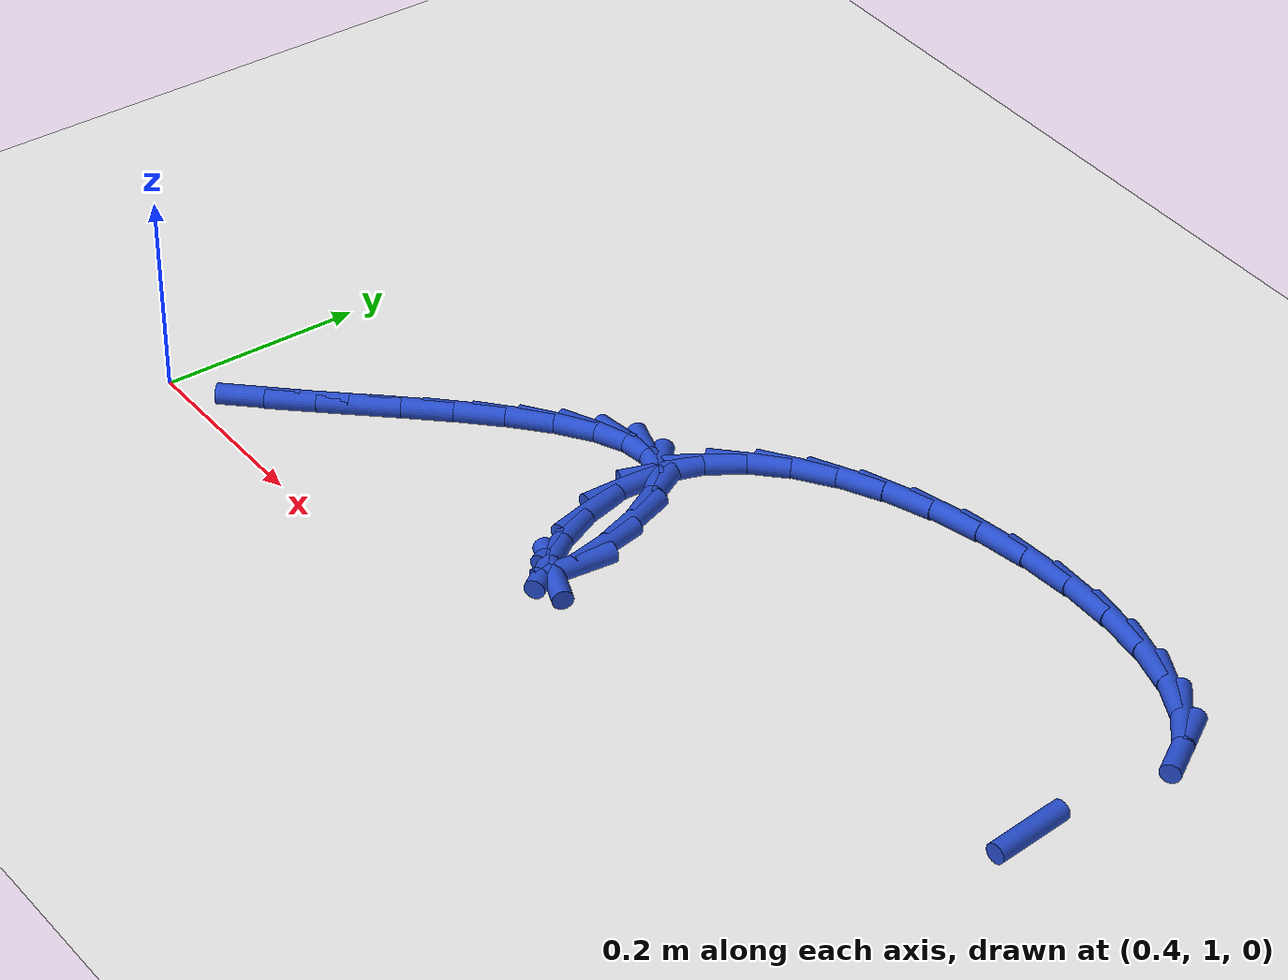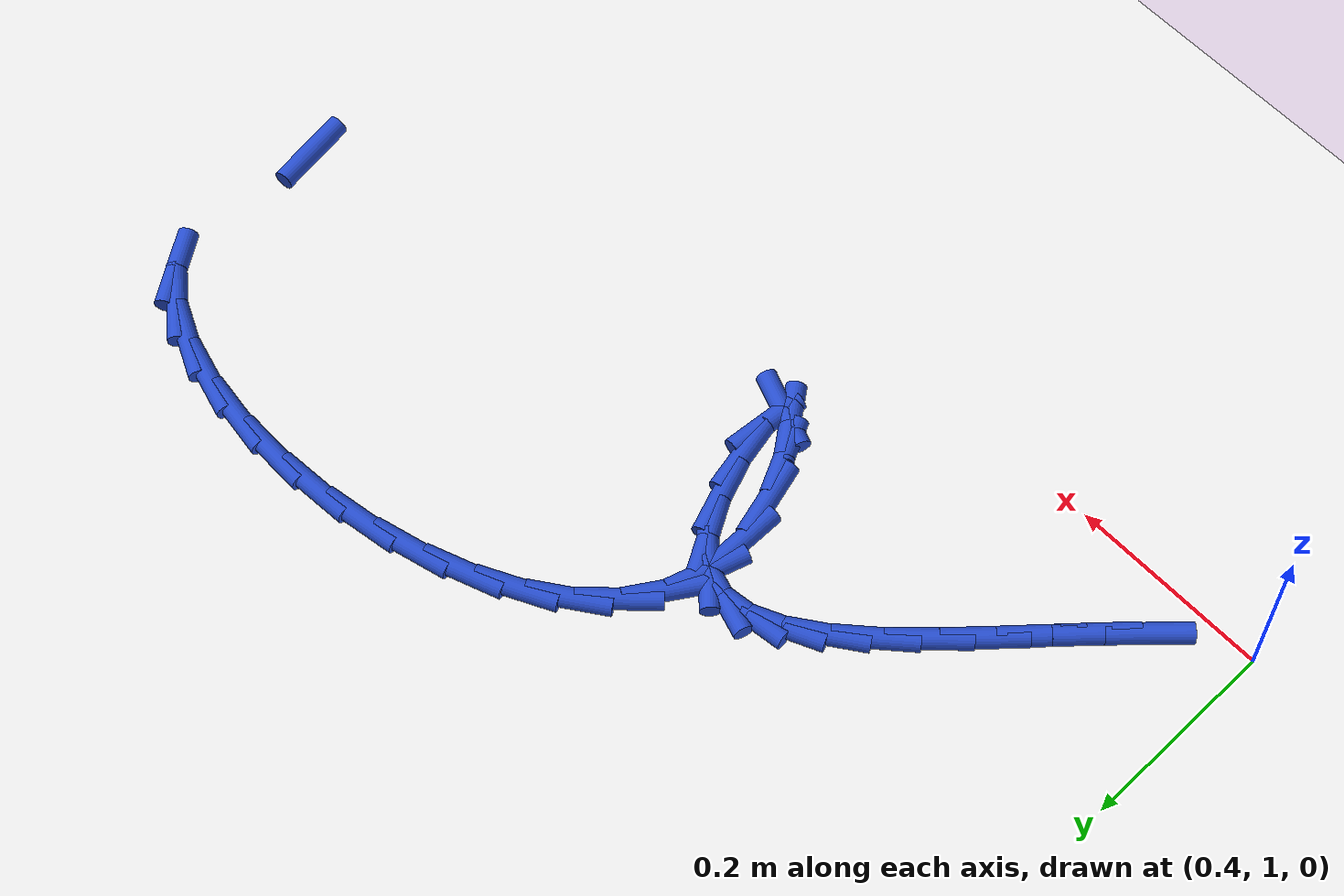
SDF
<sdf version="1.6">
 <world name="default">
  <model name="ground_plane">
   <static>1</static>
   <link name="link">
    <collision name="collision">
     <geometry><plane><normal>0 0 1</normal><size>100 100</size></plane></geometry>
     <surface><friction><ode><mu>100</mu><mu2>50</mu2></ode></friction></surface>
    </collision>
    <visual name="visual">
     <cast_shadows>0</cast_shadows>
     <geometry><plane><normal>0 0 1</normal><size>100 100</size></plane></geometry>
     <material>
      <script><uri>file://media/materials/scripts/gazebo.material</uri><name>Gazebo/WhiteGlow</name></script>
     </material>
    </visual>
   </link>
  </model>
  <model name="line">
   <link name="link_34">
    <pose>0.48012306133896443 1.0497943242061885 0.01 0 1.57 0.8080976363440308</pose>
    <collision name="collision">
     <geometry><cylinder><radius>0.01</radius><length>0.08</length></cylinder></geometry>
    </collision>
    <visual name="visual">
     <material>
      <script><name>Gazebo/Blue</name><uri>file://media/materials/scripts/gazebo.material</uri></script>
     </material>
     <geometry><cylinder><radius>0.01</radius><length>0.08</length></cylinder></geometry>
    </visual>
   </link>
   <link name="link_35">
    <pose>0.5123705516127621 1.0835400838149782 0.01 0 1.57 0.8311679696498147</pose>
    <collision name="collision">
     <geometry><cylinder><radius>0.01</radius><length>0.08</length></cylinder></geometry>
    </collision>
    <visual name="visual">
     <material>
      <script><name>Gazebo/Blue</name><uri>file://media/materials/scripts/gazebo.material</uri></script>
     </material>
     <geometry><cylinder><radius>0.01</radius><length>0.08</length></cylinder></geometry>
    </visual>
   </link>
   <link name="link_36">
    <pose>0.5454415224517037 1.1197858872515476 0.01 0 1.57 0.8341838294463393</pose>
    <collision name="collision">
     <geometry><cylinder><radius>0.01</radius><length>0.08</length></cylinder></geometry>
    </collision>
    <visual name="visual">
     <material>
      <script><name>Gazebo/Blue</name><uri>file://media/materials/scripts/gazebo.material</uri></script>
     </material>
     <geometry><cylinder><radius>0.01</radius><length>0.08</length></cylinder></geometry>
    </visual>
   </link>
   <link name="link_37">
    <pose>0.578967070326665 1.1567532076083569 0.01 0 1.57 0.8182096686960248</pose>
    <collision name="collision">
     <geometry><cylinder><radius>0.01</radius><length>0.08</length></cylinder></geometry>
    </collision>
    <visual name="visual">
     <material>
      <script><name>Gazebo/Blue</name><uri>file://media/materials/scripts/gazebo.material</uri></script>
     </material>
     <geometry><cylinder><radius>0.01</radius><length>0.08</length></cylinder></geometry>
    </visual>
   </link>
   <link name="link_38">
    <pose>0.6125751749175075 1.1926424432223204 0.01 0 1.57 0.780768452800222</pose>
    <collision name="collision">
     <geometry><cylinder><radius>0.01</radius><length>0.08</length></cylinder></geometry>
    </collision>
    <visual name="visual">
     <material>
      <script><name>Gazebo/Blue</name><uri>file://media/materials/scripts/gazebo.material</uri></script>
     </material>
     <geometry><cylinder><radius>0.01</radius><length>0.08</length></cylinder></geometry>
    </visual>
   </link>
   <link name="link_39">
    <pose>0.6458938159040948 1.2256539924303536 0.01 0 1.57 0.7146393745853895</pose>
    <collision name="collision">
     <geometry><cylinder><radius>0.01</radius><length>0.08</length></cylinder></geometry>
    </collision>
    <visual name="visual">
     <material>
      <script><name>Gazebo/Blue</name><uri>file://media/materials/scripts/gazebo.material</uri></script>
     </material>
     <geometry><cylinder><radius>0.01</radius><length>0.08</length></cylinder></geometry>
    </visual>
   </link>
   <link name="link_40">
    <pose>0.6785509729662886 1.2539882535693712 0.01 0 1.57 0.6047762715896927</pose>
    <collision name="collision">
     <geometry><cylinder><radius>0.01</radius><length>0.08</length></cylinder></geometry>
    </collision>
    <visual name="visual">
     <material>
      <script><name>Gazebo/Blue</name><uri>file://media/materials/scripts/gazebo.material</uri></script>
     </material>
     <geometry><cylinder><radius>0.01</radius><length>0.08</length></cylinder></geometry>
    </visual>
   </link>
   <link name="link_41">
    <pose>0.7101746257839522 1.2758456249762888 0.01 0 1.57 0.4223783432243723</pose>
    <collision name="collision">
     <geometry><cylinder><radius>0.01</radius><length>0.08</length></cylinder></geometry>
    </collision>
    <visual name="visual">
     <material>
      <script><name>Gazebo/Blue</name><uri>file://media/materials/scripts/gazebo.material</uri></script>
     </material>
     <geometry><cylinder><radius>0.01</radius><length>0.08</length></cylinder></geometry>
    </visual>
   </link>
   <link name="link_42">
    <pose>0.740392754036947 1.2894265049880203 0.01 0 1.57 0.12261371296069828</pose>
    <collision name="collision">
     <geometry><cylinder><radius>0.01</radius><length>0.08</length></cylinder></geometry>
    </collision>
    <visual name="visual">
     <material>
      <script><name>Gazebo/Blue</name><uri>file://media/materials/scripts/gazebo.material</uri></script>
     </material>
     <geometry><cylinder><radius>0.01</radius><length>0.08</length></cylinder></geometry>
    </visual>
   </link>
   <link name="link_43">
    <pose>0.7688333374051366 1.2929312919414815 0.01 0 1.57 -0.3082456287313501</pose>
    <collision name="collision">
     <geometry><cylinder><radius>0.01</radius><length>0.08</length></cylinder></geometry>
    </collision>
    <visual name="visual">
     <material>
      <script><name>Gazebo/Blue</name><uri>file://media/materials/scripts/gazebo.material</uri></script>
     </material>
     <geometry><cylinder><radius>0.01</radius><length>0.08</length></cylinder></geometry>
    </visual>
   </link>
   <link name="link_44">
    <pose>0.7951243555683829 1.284560384173587 0.01 0 1.57 -0.74780365004351</pose>
    <collision name="collision">
     <geometry><cylinder><radius>0.01</radius><length>0.08</length></cylinder></geometry>
    </collision>
    <visual name="visual">
     <material>
      <script><name>Gazebo/Blue</name><uri>file://media/materials/scripts/gazebo.material</uri></script>
     </material>
     <geometry><cylinder><radius>0.01</radius><length>0.08</length></cylinder></geometry>
    </visual>
   </link>
   <link name="link_45">
    <pose>0.8188937882065485 1.262514180021252 0.01 0 1.57 -1.0548621084331538</pose>
    <collision name="collision">
     <geometry><cylinder><radius>0.01</radius><length>0.08</length></cylinder></geometry>
    </collision>
    <visual name="visual">
     <material>
      <script><name>Gazebo/Blue</name><uri>file://media/materials/scripts/gazebo.material</uri></script>
     </material>
     <geometry><cylinder><radius>0.01</radius><length>0.08</length></cylinder></geometry>
    </visual>
   </link>
   <link name="link_46">
    <pose>0.8396079270320379 1.2259926234696037 0.01 0 1.57 -1.2220957559005912</pose>
    <collision name="collision">
     <geometry><cylinder><radius>0.01</radius><length>0.08</length></cylinder></geometry>
    </collision>
    <visual name="visual">
     <material>
      <script><name>Gazebo/Blue</name><uri>file://media/materials/scripts/gazebo.material</uri></script>
     </material>
     <geometry><cylinder><radius>0.01</radius><length>0.08</length></cylinder></geometry>
    </visual>
   </link>
   <link name="link_47">
    <pose>0.8553655190994893 1.1826497403559655 0.01 0 1.57 -1.3593594995580638</pose>
    <collision name="collision">
     <geometry><cylinder><radius>0.01</radius><length>0.08</length></cylinder></geometry>
    </collision>
    <visual name="visual">
     <material>
      <script><name>Gazebo/Blue</name><uri>file://media/materials/scripts/gazebo.material</uri></script>
     </material>
     <geometry><cylinder><radius>0.01</radius><length>0.08</length></cylinder></geometry>
    </visual>
   </link>
   <link name="link_48">
    <pose>0.8635776683142906 1.1443905266310386 0.01 0 1.57 1.4802933757255572</pose>
    <collision name="collision">
     <geometry><cylinder><radius>0.01</radius><length>0.08</length></cylinder></geometry>
    </collision>
    <visual name="visual">
     <material>
      <script><name>Gazebo/Blue</name><uri>file://media/materials/scripts/gazebo.material</uri></script>
     </material>
     <geometry><cylinder><radius>0.01</radius><length>0.08</length></cylinder></geometry>
    </visual>
   </link>
   <link name="link_49">
    <pose>0.8616502699073799 1.123152177969227 0.01 0 1.57 -0.38003708982980605</pose>
    <collision name="collision">
     <geometry><cylinder><radius>0.01</radius><length>0.08</length></cylinder></geometry>
    </collision>
    <visual name="visual">
     <material>
      <script><name>Gazebo/Blue</name><uri>file://media/materials/scripts/gazebo.material</uri></script>
     </material>
     <geometry><cylinder><radius>0.01</radius><length>0.08</length></cylinder></geometry>
    </visual>
   </link>
   <link name="link_50">
    <pose>0.8480536195474618 1.1285834378490758 0.01 0 1.57 -0.9412311982583728</pose>
    <collision name="collision">
     <geometry><cylinder><radius>0.01</radius><length>0.08</length></cylinder></geometry>
    </collision>
    <visual name="visual">
     <material>
      <script><name>Gazebo/Blue</name><uri>file://media/materials/scripts/gazebo.material</uri></script>
     </material>
     <geometry><cylinder><radius>0.01</radius><length>0.08</length></cylinder></geometry>
    </visual>
   </link>
   <link name="link_51">
    <pose>0.8276464142431103 1.156598039356859 0.01 0 1.57 -1.1211320933706357</pose>
    <collision name="collision">
     <geometry><cylinder><radius>0.01</radius><length>0.08</length></cylinder></geometry>
    </collision>
    <visual name="visual">
     <material>
      <script><name>Gazebo/Blue</name><uri>file://media/materials/scripts/gazebo.material</uri></script>
     </material>
     <geometry><cylinder><radius>0.01</radius><length>0.08</length></cylinder></geometry>
    </visual>
   </link>
   <link name="link_52">
    <pose>0.8076597823152123 1.1980090077497736 0.01 0 1.57 -1.3066910710389916</pose>
    <collision name="collision">
     <geometry><cylinder><radius>0.01</radius><length>0.08</length></cylinder></geometry>
    </collision>
    <visual name="visual">
     <material>
      <script><name>Gazebo/Blue</name><uri>file://media/materials/scripts/gazebo.material</uri></script>
     </material>
     <geometry><cylinder><radius>0.01</radius><length>0.08</length></cylinder></geometry>
    </visual>
   </link>
   <link name="link_53">
    <pose>0.795323969610544 1.2436258807061757 0.01 0 1.57 1.5627005516731884</pose>
    <collision name="collision">
     <geometry><cylinder><radius>0.01</radius><length>0.08</length></cylinder></geometry>
    </collision>
    <visual name="visual">
     <material>
      <script><name>Gazebo/Blue</name><uri>file://media/materials/scripts/gazebo.material</uri></script>
     </material>
     <geometry><cylinder><radius>0.01</radius><length>0.08</length></cylinder></geometry>
    </visual>
   </link>
   <link name="link_54">
    <pose>0.7956712769642732 1.2865247706561351 0.01 0 1.57 1.2639186267338465</pose>
    <collision name="collision">
     <geometry><cylinder><radius>0.01</radius><length>0.08</length></cylinder></geometry>
    </collision>
    <visual name="visual">
     <material>
      <script><name>Gazebo/Blue</name><uri>file://media/materials/scripts/gazebo.material</uri></script>
     </material>
     <geometry><cylinder><radius>0.01</radius><length>0.08</length></cylinder></geometry>
    </visual>
   </link>
   <link name="link_55">
    <pose>0.8080631684792999 1.3256296958192586 0.01 0 1.57 0.9936578278577751</pose>
    <collision name="collision">
     <geometry><cylinder><radius>0.01</radius><length>0.08</length></cylinder></geometry>
    </collision>
    <visual name="visual">
     <material>
      <script><name>Gazebo/Blue</name><uri>file://media/materials/scripts/gazebo.material</uri></script>
     </material>
     <geometry><cylinder><radius>0.01</radius><length>0.08</length></cylinder></geometry>
    </visual>
   </link>
   <link name="link_56">
    <pose>0.8309588708674229 1.3607950837201697 0.01 0 1.57 0.7730302850920502</pose>
    <collision name="collision">
     <geometry><cylinder><radius>0.01</radius><length>0.08</length></cylinder></geometry>
    </collision>
    <visual name="visual">
     <material>
      <script><name>Gazebo/Blue</name><uri>file://media/materials/scripts/gazebo.material</uri></script>
     </material>
     <geometry><cylinder><radius>0.01</radius><length>0.08</length></cylinder></geometry>
    </visual>
   </link>
   <link name="link_57">
    <pose>0.8628176108404417 1.391875361883494 0.01 0 1.57 0.5995839545442522</pose>
    <collision name="collision">
     <geometry><cylinder><radius>0.01</radius><length>0.08</length></cylinder></geometry>
    </collision>
    <visual name="visual">
     <material>
      <script><name>Gazebo/Blue</name><uri>file://media/materials/scripts/gazebo.material</uri></script>
     </material>
     <geometry><cylinder><radius>0.01</radius><length>0.08</length></cylinder></geometry>
    </visual>
   </link>
   <link name="link_58">
    <pose>0.9020986151101548 1.4187249578338554 0.01 0 1.57 0.4617343494042436</pose>
    <collision name="collision">
     <geometry><cylinder><radius>0.01</radius><length>0.08</length></cylinder></geometry>
    </collision>
    <visual name="visual">
     <material>
      <script><name>Gazebo/Blue</name><uri>file://media/materials/scripts/gazebo.material</uri></script>
     </material>
     <geometry><cylinder><radius>0.01</radius><length>0.08</length></cylinder></geometry>
    </visual>
   </link>
   <link name="link_59">
    <pose>0.9472611103883621 1.4411982990958792 0.01 0 1.57 0.3478848116614605</pose>
    <collision name="collision">
     <geometry><cylinder><radius>0.01</radius><length>0.08</length></cylinder></geometry>
    </collision>
    <visual name="visual">
     <material>
      <script><name>Gazebo/Blue</name><uri>file://media/materials/scripts/gazebo.material</uri></script>
     </material>
     <geometry><cylinder><radius>0.01</radius><length>0.08</length></cylinder></geometry>
    </visual>
   </link>
   <link name="link_60">
    <pose>0.9967643233868619 1.45914981319419 0.01 0 1.57 0.24872387078479347</pose>
    <collision name="collision">
     <geometry><cylinder><radius>0.01</radius><length>0.08</length></cylinder></geometry>
    </collision>
    <visual name="visual">
     <material>
      <script><name>Gazebo/Blue</name><uri>file://media/materials/scripts/gazebo.material</uri></script>
     </material>
     <geometry><cylinder><radius>0.01</radius><length>0.08</length></cylinder></geometry>
    </visual>
   </link>
   <link name="link_61">
    <pose>1.0490674808174545 1.472433927653412 0.01 0 1.57 0.15685565841486598</pose>
    <collision name="collision">
     <geometry><cylinder><radius>0.01</radius><length>0.08</length></cylinder></geometry>
    </collision>
    <visual name="visual">
     <material>
      <script><name>Gazebo/Blue</name><uri>file://media/materials/scripts/gazebo.material</uri></script>
     </material>
     <geometry><cylinder><radius>0.01</radius><length>0.08</length></cylinder></geometry>
    </visual>
   </link>
   <link name="link_62">
    <pose>1.102629809391938 1.4809050699981707 0.01 0 1.57 0.06583097344384599</pose>
    <collision name="collision">
     <geometry><cylinder><radius>0.01</radius><length>0.08</length></cylinder></geometry>
    </collision>
    <visual name="visual">
     <material>
      <script><name>Gazebo/Blue</name><uri>file://media/materials/scripts/gazebo.material</uri></script>
     </material>
     <geometry><cylinder><radius>0.01</radius><length>0.08</length></cylinder></geometry>
    </visual>
   </link>
   <link name="link_63">
    <pose>1.1559105358221127 1.4844176677530905 0.01 0 1.57 -0.030918443933877677</pose>
    <collision name="collision">
     <geometry><cylinder><radius>0.01</radius><length>0.08</length></cylinder></geometry>
    </collision>
    <visual name="visual">
     <material>
      <script><name>Gazebo/Blue</name><uri>file://media/materials/scripts/gazebo.material</uri></script>
     </material>
     <geometry><cylinder><radius>0.01</radius><length>0.08</length></cylinder></geometry>
    </visual>
   </link>
   <link name="link_64">
    <pose>1.207368886819776 1.4828261484427954 0.01 0 1.57 -0.14129520392929415</pose>
    <collision name="collision">
     <geometry><cylinder><radius>0.01</radius><length>0.08</length></cylinder></geometry>
    </collision>
    <visual name="visual">
     <material>
      <script><name>Gazebo/Blue</name><uri>file://media/materials/scripts/gazebo.material</uri></script>
     </material>
     <geometry><cylinder><radius>0.01</radius><length>0.08</length></cylinder></geometry>
    </visual>
   </link>
   <link name="link_65">
    <pose>1.2554640890967288 1.4759849395919113 0.01 0 1.57 -0.2760743322663576</pose>
    <collision name="collision">
     <geometry><cylinder><radius>0.01</radius><length>0.08</length></cylinder></geometry>
    </collision>
    <visual name="visual">
     <material>
      <script><name>Gazebo/Blue</name><uri>file://media/materials/scripts/gazebo.material</uri></script>
     </material>
     <geometry><cylinder><radius>0.01</radius><length>0.08</length></cylinder></geometry>
    </visual>
   </link>
   <link name="link_66">
    <pose>1.2986553693647696 1.4637484687250621 0.01 0 1.57 -0.45058855030204903</pose>
    <collision name="collision">
     <geometry><cylinder><radius>0.01</radius><length>0.08</length></cylinder></geometry>
    </collision>
    <visual name="visual">
     <material>
      <script><name>Gazebo/Blue</name><uri>file://media/materials/scripts/gazebo.material</uri></script>
     </material>
     <geometry><cylinder><radius>0.01</radius><length>0.08</length></cylinder></geometry>
    </visual>
   </link>
   <link name="link_67">
    <pose>1.3354019543356972 1.4459711633668726 0.01 0 1.57 -0.6843093279620954</pose>
    <collision name="collision">
     <geometry><cylinder><radius>0.01</radius><length>0.08</length></cylinder></geometry>
    </collision>
    <visual name="visual">
     <material>
      <script><name>Gazebo/Blue</name><uri>file://media/materials/scripts/gazebo.material</uri></script>
     </material>
     <geometry><cylinder><radius>0.01</radius><length>0.08</length></cylinder></geometry>
    </visual>
   </link>
   <link name="link_68">
    <pose>1.3641630707213115 1.4225074510419677 0.01 0 1.57 -0.989811511522134</pose>
    <collision name="collision">
     <geometry><cylinder><radius>0.01</radius><length>0.08</length></cylinder></geometry>
    </collision>
    <visual name="visual">
     <material>
      <script><name>Gazebo/Blue</name><uri>file://media/materials/scripts/gazebo.material</uri></script>
     </material>
     <geometry><cylinder><radius>0.01</radius><length>0.08</length></cylinder></geometry>
    </visual>
   </link>
   <link name="link_73">
    <pose>1.3731050175448636 1.2469603718908497 0.01 0 1.57 -1.4364821296150232</pose>
    <collision name="collision">
     <geometry><cylinder><radius>0.01</radius><length>0.08</length></cylinder></geometry>
    </collision>
    <visual name="visual">
     <material>
      <script><name>Gazebo/Blue</name><uri>file://media/materials/scripts/gazebo.material</uri></script>
     </material>
     <geometry><cylinder><radius>0.01</radius><length>0.08</length></cylinder></geometry>
    </visual>
   </link>
  </model>
 </world>
</sdf>
